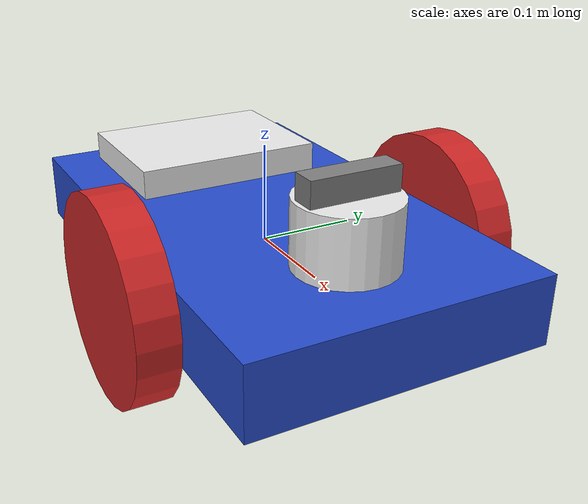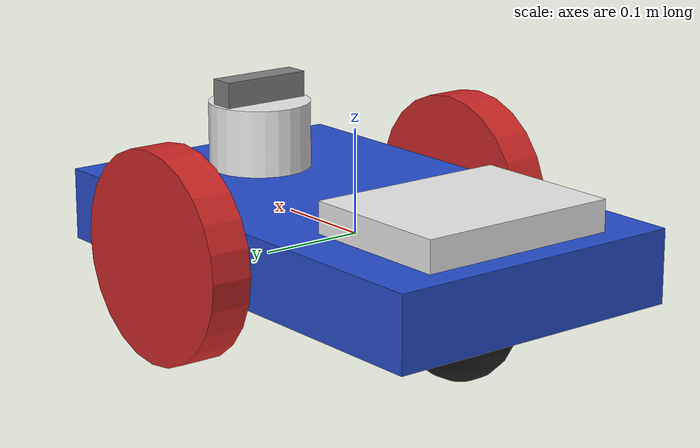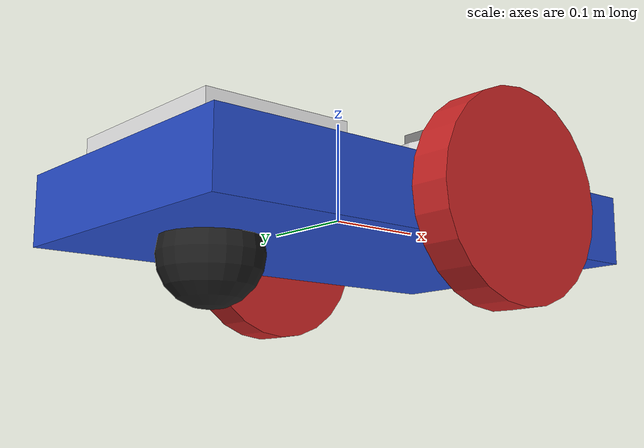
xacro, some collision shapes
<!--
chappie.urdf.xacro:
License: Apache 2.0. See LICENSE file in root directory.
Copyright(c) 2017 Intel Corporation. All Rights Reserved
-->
<?xml version="1.0"?>
<robot name="realsense2_camera" xmlns:xacro="http://ros.org/wiki/xacro">
    <xacro:include filename="$(find chappie)/urdf/chappie.urdf.xacro" />
    <xacro:include filename="$(find chappie)/urdf/materials.xacro" />
    <xacro:include filename="$(find chappie)/urdf/chappie.gazebo" />
    <xacro:include filename="$(find chappie)/urdf/macros.xacro" />

    <link name="base_link">

        <!-- pose and inertial -->
        <pose>0 0 0.1 0 0 0</pose>
        <!-- body -->
        <collision name="collision_chassis">
        <geometry>
            <box size="0.5 0.3 0.07"/>
        </geometry>
        </collision>
        <visual>
        <origin rpy="0 0 0" xyz="0 0 0"/>
        <geometry>
            <box size="0.5 0.3 0.07"/>
        </geometry>
        <material name="blue"/>
        </visual>
        <!-- caster front -->
        <collision name="caster_front_collision">
        <origin rpy=" 0 0 0" xyz="-0.15 0 -0.05"/>
        <geometry>
            <sphere radius="0.05"/>
        </geometry>
        <surface>
            <friction>
            <ode>
                <mu>0</mu>
                <mu2>0</mu2>
                <slip1>1.0</slip1>
                <slip2>1.0</slip2>
            </ode>
            </friction>
        </surface>
        </collision>
        <visual name="caster_front_visual">
        <origin rpy=" 0 0 0" xyz="-0.15 0 -0.05"/>
        <geometry>
            <sphere radius="0.05"/>
        </geometry>
        </visual>
    </link>
    <link name="sensor_laser">
        <inertial>
        <origin xyz="0 0 0" rpy="0 0 0" />
        <mass value="1" />
        <xacro:cylinder_inertia mass="1" r="0.05" l="0.1" />
        </inertial>

        <visual>
        <origin xyz="0 0 0" rpy="0 0 0" />
        <geometry>
            <cylinder radius="0.05" length="0.1"/>
        </geometry>
        <material name="white" />
        </visual>

        <collision>
        <origin xyz="0 0 0" rpy="0 0 0"/>
        <geometry>
            <cylinder radius="0.05" length="0.1"/>
        </geometry>
        </collision>
    </link>

    <link name="circuitry_back">
        <inertial>
        <origin xyz="0 0 0" rpy="0 0 0" />
        <mass value="1" />
        <xacro:box_inertia m="1" x="0.15" y="0" z="0.05"/>
        </inertial>

        <visual>
        <origin xyz="0 0 0" rpy="0 0 0" />
        <geometry>
            <box size="0.15 0.2 0.03"/>
        </geometry>
        <material name="white" />
        </visual>

        <collision>
        <origin xyz="0 0 0" rpy="0 0 0"/>
        <geometry>
            <box size="0.15 0.2 0.03"/>
        </geometry>
        </collision>
    </link>
    <joint name="joint_sensor_laser" type="fixed">
        <origin xyz="0.15 0 0.05" rpy="0 0 0"/>
        <parent link="base_link"/>
        <child link="sensor_laser"/>
    </joint>
    <joint name="joint_circuitry_back" type="fixed">
        <origin xyz="-0.15 0 0.05" rpy="0 0 0"/>
        <parent link="base_link"/>
        <child link="circuitry_back"/>
    </joint>

    <xacro:link_wheel name="link_right_wheel" />
    <xacro:joint_wheel name="joint_right_wheel" child="link_right_wheel" parent="base_link" origin_xyz="0.05 0.175 0" />

    <xacro:link_wheel name="link_left_wheel" />
    <xacro:joint_wheel name="joint_left_wheel" child="link_left_wheel" parent="base_link" origin_xyz="0.05 -0.175 0" />

    <xacro:sensor_d435 name="camera" topics_ns="camera" parent="base_link" publish_pointcloud="true">
    <origin xyz="0.15 0 0.1" rpy="0 0 0" />
    </xacro:sensor_d435>

</robot>

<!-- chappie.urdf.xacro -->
<robot name="chappie" xmlns:xacro="http://ros.org/wiki/xacro">
  <!--File includes-->

  <xacro:include filename="$(find chappie)/urdf/_d435.gazebo.xacro"/>

  <xacro:macro name="sensor_d435" params="name:=camera topics_ns:=camera parent *origin publish_pointcloud:=true">
    <xacro:property name="M_PI" value="3.1415926535897931" />

    <!-- The following values are approximate, and the camera node
     publishing TF values with actual calibrated camera extrinsic values -->
    <xacro:property name="d435_cam_depth_to_left_ir_offset" value="0.0"/>
    <xacro:property name="d435_cam_depth_to_right_ir_offset" value="-0.050"/>
    <xacro:property name="d435_cam_depth_to_color_offset" value="0.015"/>

    <!-- The following values model the aluminum peripherial case for the
    D435 camera, with the camera joint represented by the actual
    peripherial camera tripod mount -->
    <xacro:property name="d435_cam_width" value="0.090"/>
    <xacro:property name="d435_cam_height" value="0.025"/>
    <xacro:property name="d435_cam_depth" value="0.02505"/>
    <xacro:property name="d435_cam_mount_from_center_offset" value="0.0149"/>

    <!-- The following offset is relative the the physical D435 camera peripherial
    camera tripod mount -->
    <xacro:property name="d435_cam_depth_px" value="${d435_cam_mount_from_center_offset}"/>
    <xacro:property name="d435_cam_depth_py" value="0.0175"/>
    <xacro:property name="d435_cam_depth_pz" value="${d435_cam_height/2}"/>

    <material name="${name}_aluminum">
    <color rgba="0.5 0.5 0.5 1"/>
    </material>

    <!-- camera body, with origin at bottom screw mount -->
    <joint name="${name}_joint" type="fixed">
      <xacro:insert_block name="origin" />
      <parent link="${parent}"/>
      <child link="${name}_bottom_screw_frame" />
    </joint>
    <link name="${name}_bottom_screw_frame"/>

    <joint name="${name}_link_joint" type="fixed">
      <origin xyz="0 ${d435_cam_depth_py} ${d435_cam_depth_pz}" rpy="0 0 0"/>
      <parent link="${name}_bottom_screw_frame"/>
      <child link="${name}_link" />
    </joint>

    <link name="${name}_link">
      <visual>
      <origin xyz="${d435_cam_mount_from_center_offset} ${-d435_cam_depth_py} 0" rpy="${M_PI/2} 0 ${M_PI/2}"/>
        <geometry>
          <mesh filename="package://chappie/meshes/d435.dae" />
        </geometry>
        <material name="${name}_aluminum"/>
      </visual>
      <collision>
        <origin xyz="0 ${-d435_cam_depth_py} 0" rpy="0 0 0"/>
        <geometry>
        <box size="${d435_cam_depth} ${d435_cam_width} ${d435_cam_height}"/>
        </geometry>
      </collision>
      <inertial>
        <!-- The following are not reliable values, and should not be used for modeling -->
        <mass value="0.564" />
        <origin xyz="0 0 0" />
        <inertia ixx="0.003881243" ixy="0.0" ixz="0.0" iyy="0.000498940" iyz="0.0" izz="0.003879257" />
      </inertial>
    </link>

    <!-- camera depth joints and links -->
    <joint name="${name}_depth_joint" type="fixed">
      <origin xyz="0 0 0" rpy="0 0 0"/>
      <parent link="${name}_link"/>
      <child link="${name}_depth_frame" />
    </joint>
    <link name="${name}_depth_frame"/>

    <joint name="${name}_depth_optical_joint" type="fixed">
      <origin xyz="0 0 0" rpy="${-M_PI/2} 0 ${-M_PI/2}" />
      <parent link="${name}_depth_frame" />
      <child link="${name}_depth_optical_frame" />
    </joint>
    <link name="${name}_depth_optical_frame"/>

    <!-- camera left IR joints and links -->
    <joint name="${name}_left_ir_joint" type="fixed">
      <origin xyz="0 ${d435_cam_depth_to_left_ir_offset} 0" rpy="0 0 0" />
      <parent link="${name}_depth_frame" />
      <child link="${name}_left_ir_frame" />
    </joint>
    <link name="${name}_left_ir_frame"/>

    <joint name="${name}_left_ir_optical_joint" type="fixed">
      <origin xyz="0 0 0" rpy="${-M_PI/2} 0 ${-M_PI/2}" />
      <parent link="${name}_left_ir_frame" />
      <child link="${name}_left_ir_optical_frame" />
    </joint>
    <link name="${name}_left_ir_optical_frame"/>

    <!-- camera right IR joints and links -->
    <joint name="${name}_right_ir_joint" type="fixed">
      <origin xyz="0 ${d435_cam_depth_to_right_ir_offset} 0" rpy="0 0 0" />
      <parent link="${name}_depth_frame" />
      <child link="${name}_right_ir_frame" />
    </joint>
    <link name="${name}_right_ir_frame"/>

    <joint name="${name}_right_ir_optical_joint" type="fixed">
      <origin xyz="0 0 0" rpy="${-M_PI/2} 0 ${-M_PI/2}" />
      <parent link="${name}_right_ir_frame" />
      <child link="${name}_right_ir_optical_frame" />
    </joint>
    <link name="${name}_right_ir_optical_frame"/>

    <!-- camera color joints and links -->
    <joint name="${name}_color_joint" type="fixed">
      <origin xyz="0 ${d435_cam_depth_to_color_offset} 0" rpy="0 0 0" />
      <parent link="${name}_depth_frame" />
      <child link="${name}_color_frame" />
    </joint>
    <link name="${name}_color_frame"/>

    <joint name="${name}_color_optical_joint" type="fixed">
      <origin xyz="0 0 0" rpy="${-M_PI/2} 0 ${-M_PI/2}" />
      <parent link="${name}_color_frame" />
      <child link="${name}_color_optical_frame" />
    </joint>
    <link name="${name}_color_optical_frame"/>

    <!-- Realsense Gazebo Plugin -->
    <xacro:gazebo_d435 camera_name="${name}" reference_link="${name}_link" topics_ns="${topics_ns}" depth_optical_frame="${name}_depth_optical_frame" color_optical_frame="${name}_color_optical_frame" infrared1_optical_frame="${name}_left_ir_optical_frame" infrared2_optical_frame="${name}_right_ir_optical_frame" publish_pointcloud="${publish_pointcloud}"/>

  </xacro:macro>
</robot>

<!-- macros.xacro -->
<robot xmlns:xacro="http://www.ros.org/wiki/xacro">
    <xacro:macro name="link_wheel" params="name">
        <link name="${name}">
            <inertial>
              <mass value="0.2"/>
              <origin rpy="0 1.5707 1.5707" xyz="0 0 0"/>
              <inertia ixx="0.000526666666667" ixy="0" ixz="0" iyy="0.000526666666667" iyz="0" izz="0.001"/>
            </inertial>
            <collision name="link_right_wheel_collision">
              <origin rpy="0 1.5707 1.5707" xyz="0 0 0"/>
              <geometry>
                <cylinder length="0.04" radius="0.1"/>
              </geometry>
            </collision>
            <visual name="${name}_visual">
              <origin rpy="0 1.5707 1.5707" xyz="0 0 0"/>
              <geometry>
                <cylinder length="0.04" radius="0.1"/>
              </geometry>
            </visual>
        </link>
    </xacro:macro>

    <xacro:macro name="joint_wheel" params="name child parent origin_xyz">
      <joint name="${name}" type="continuous">
        <origin rpy="0 0 0" xyz="${origin_xyz}"/>
        <child link="${child}"/>
        <parent link="${parent}"/>
        <axis rpy="0 0 0" xyz="0 1 0"/>
        <limit effort="10000" velocity="1000"/>
        <joint_properties damping="1.0" friction="1.0"/>
      </joint>
    </xacro:macro>

    <xacro:macro name="cylinder_inertia" params="mass r l">
      <inertia  ixx="${mass*(3*r*r+l*l)/12}" ixy = "0" ixz = "0"
                iyy="${mass*(3*r*r+l*l)/12}" iyz = "0"
                izz="${mass*(r*r)/2}" />
    </xacro:macro>
    <xacro:macro name="box_inertia" params="m x y z">
      <inertia  ixx="${m*(y*y+z*z)/12}" ixy = "0" ixz = "0"
                iyy="${m*(x*x+z*z)/12}" iyz = "0"
                izz="${m*(x*x+z*z)/12}" />
    </xacro:macro>

</robot>
